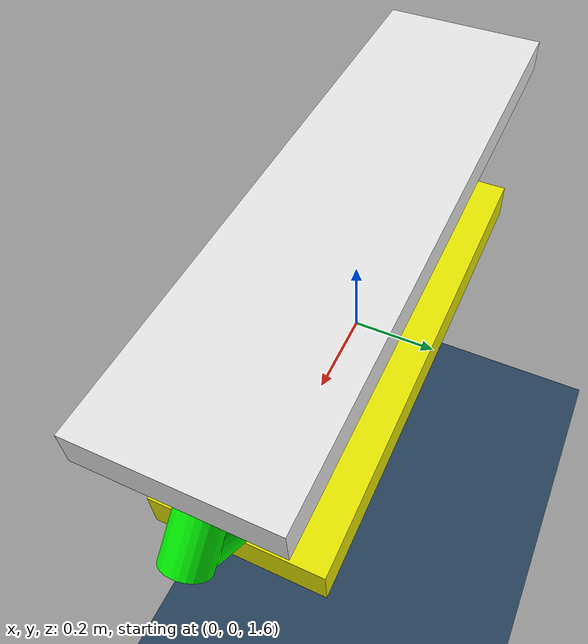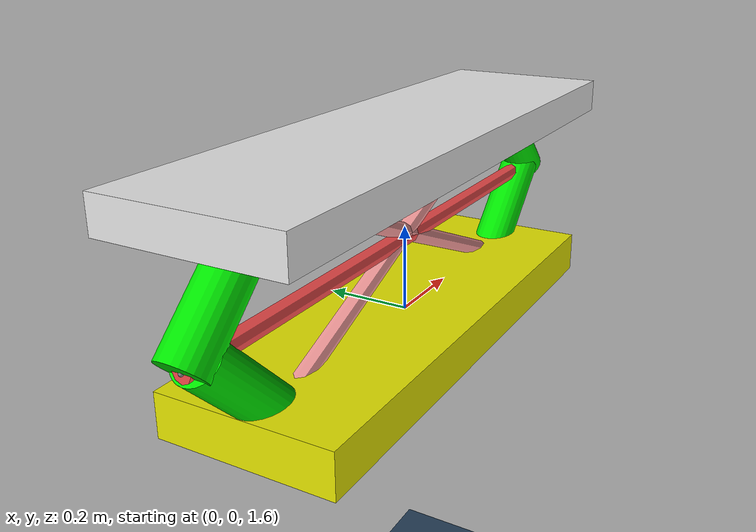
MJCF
<mujoco>
	<!-- 增加两条斜对称布置的弹簧 -->
	<option timestep="0.0001" integrator="RK4" gravity="0 0 -10">
		<flag sensornoise="enable" contact="enable" energy="enable" />
	</option>

	<statistic center="0 0 0.55" extent="1.1" />

	<visual>
		<headlight diffuse="0.6 0.6 0.6" ambient="0.3 0.3 0.3" specular="0 0 0" />
		<rgba haze="0.15 0.25 0.35 1" />
		<global azimuth="150" elevation="-20" />
	</visual>

    <asset>
        <texture type="skybox" builtin="gradient" rgb1="0.3 0.5 0.7" rgb2="0 0 0" width="512" height="3072"/>
        <texture type="2d" name="groundplane" builtin="checker" mark="edge" rgb1="0.2 0.3 0.4" rgb2="0.1 0.2 0.3"
          markrgb="0.8 0.8 0.8" width="300" height="300"/>
        <material name="groundplane" texture="groundplane" texuniform="true" texrepeat="5 5" reflectance="0.2"/>
      </asset>

	<default>
		<equality solref="0.005 1" />
	</default>

	<worldbody>
        <light pos="0 0 3" dir="0 0 -1" directional="false"/>
		<light diffuse=".5 .5 .5" pos="0 0 3" dir="0 0 -1" />
        <geom name="floor" size="0 0 .125" type="plane" material="groundplane" conaffinity="15" condim="3"/>
		<body name="hopper" pos="0 0 2">
			<!-- 约束跳跃机器人只在x和z方向自由 -->
			<freejoint />
			<geom type="box" size=".7 .2 .04" rgba=".9 .9 .9 1" mass="0.5" />
			<site name="imu" size="0.01" pos="0 0 0" />
			<site name="top_left" size="0.02" pos="-0.5 0 0" />
			<site name="top_right" size="0.02" pos="0.5 0 0" />
			<body name="thigh_left" pos="-0.6179 0 -0.1179" euler="0 45 0">
				<joint name="hip_left" type="hinge" pos="0 0 0.1667" axis="0 -1 0" range="-45 130"
					limited="auto" />
				<geom type="cylinder" size=".05 .15" rgba="0 .9 0 1" mass="0.5" />
				<site name="s_left" pos="0 0 -0.15" />
				<body name="leg_left" pos="0.1667 0 -0.1179" euler="0 -90 0">
					<joint name="knee_left" type="hinge" pos="0 0 0.1667" axis="0 -1 0" />
					<geom type="cylinder" size=".05 .15" rgba="0 .9 0 1" mass="0.5" />
				</body>
			</body>
			<body name="thigh_right" pos="0.6179 0 -0.1179" euler="0 -45 0">
				<joint name="hip_right" type="hinge" pos="0 0 0.1667" axis="0 -1 0" range="-130 45"
					limited="auto" />
				<geom type="cylinder" size=".05 .15" rgba="0 .9 0 1" mass="0.5" />
				<site name="s_right" pos="0 0 -0.15" />
				<body name="leg_right" pos="-0.1667 0 -0.1179" euler="0 90 0">
					<joint name="knee_right" type="hinge" pos="0 0 0.1667" axis="0 -1 0" />
					<geom type="cylinder" size=".05 .15" rgba="0 .9 0 1" mass="0.5" />
				</body>
			</body>
		</body>
		<body name="foot" pos="0 0 1.5757">
			<freejoint />
			<geom type="box" size=".6 .2 .05" rgba=".9 .9 .0 1" mass="0.5" />
			<site name="foot_ground" pos="0 0 0" />
			<site name="foot_left" pos="-0.5 0 0" />
			<site name="foot_right" pos="0.5 0 0" />
		</body>
	</worldbody>

	<contact>
		<exclude name="e0" body1="hopper" body2="thigh_left" />
		<exclude name="e1" body1="hopper" body2="thigh_right" />
		<exclude name="e2" body1="thigh_left" body2="leg_left" />
		<exclude name="e3" body1="thigh_right" body2="leg_right" />
		<exclude name="e4" body1="leg_left" body2="foot" />
		<exclude name="e5" body1="leg_right" body2="foot" />
        <exclude name="e6" body1="hopper" body2="leg_right" />
		<exclude name="e7" body1="hopper" body2="leg_left" />
        <exclude name="e8" body1="thigh_left" body2="foot" />
		<exclude name="e9" body1="thigh_right" body2="foot" />
	</contact>

	<equality>
		<connect name="c1" body1="leg_left" body2="foot" anchor="0 0 -0.1667" />
		<connect name="c2" body1="leg_right" body2="foot" anchor="0 0 -0.1667" />
	</equality>

	<tendon>
		<spatial name='tendon1' range="0.1 10" limited="true" width=".02" rgba=".95 .3 .3 1"
			stiffness="50" springlength="0.5">
			<site site="s_left" />
			<site site="s_right" />
		</spatial>
        <spatial name='tendon2' range="0.1 10" limited="true" width=".02" rgba=".95 .6 .6 1"
			stiffness="50" springlength="0.5">
			<site site="top_left" />
			<site site="foot_right" />
		</spatial>
		<spatial name='tendon3' range="0.1 10" limited="true" width=".02" rgba=".95 .6 .6 1"
			stiffness="50" springlength="0.5">
			<site site="top_right" />
			<site site="foot_left" />
		</spatial>

	</tendon>

	<actuator>
		<position name="pservo_hip_left" joint="hip_left" kp="0" />
		<velocity name="vservo_hip_left" joint="hip_left" kv="0" />
		<position name="pservo_hip_right" joint="hip_right" kp="0" />
		<velocity name="vservo_hip_right" joint="hip_right" kv="0" />
	</actuator>

	<sensor>
		<jointpos name="hip_pos_sensor" joint="hip_left" noise="0" />
		<jointvel name="hip_vel_sensor" joint="hip_left" noise="0" />
		<accelerometer name="acceleration_sensor" site="imu" />
		<velocimeter name="velocity_sensor" site="imu" />
		<force name="ground_force_sensor" site="foot_ground" />
	</sensor>

</mujoco>
